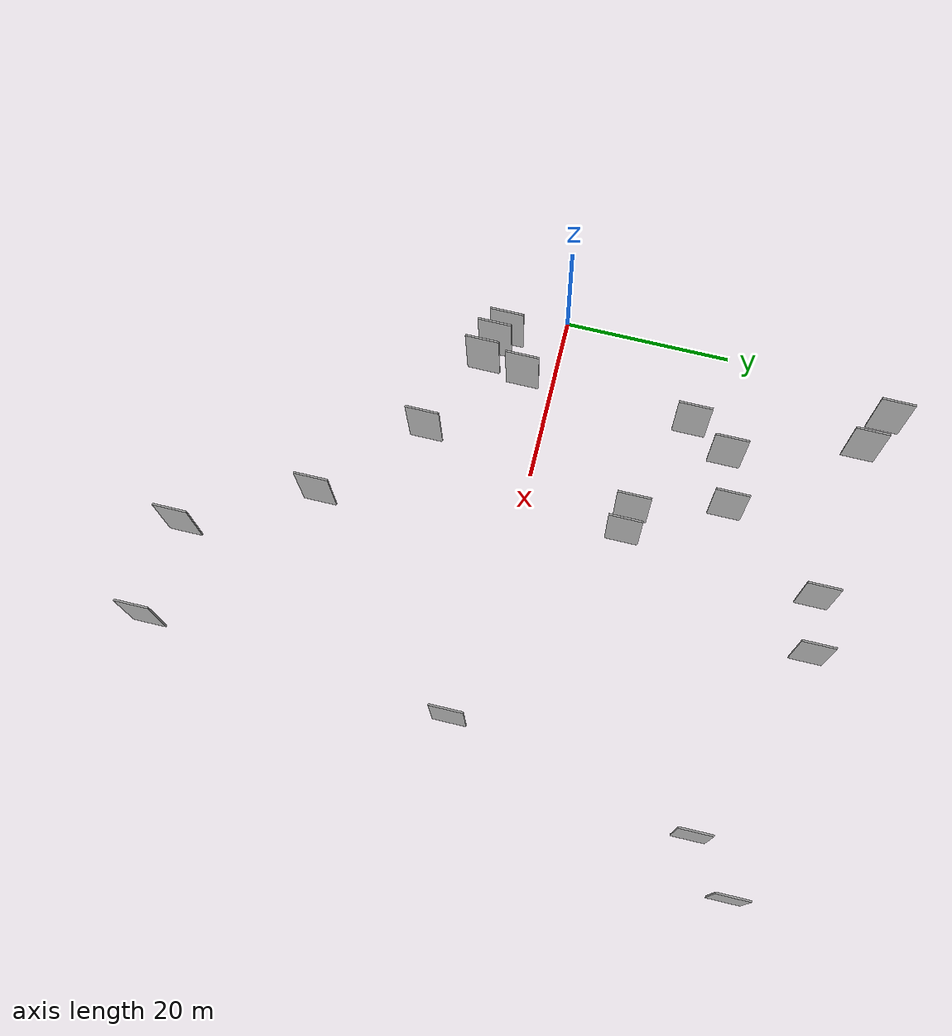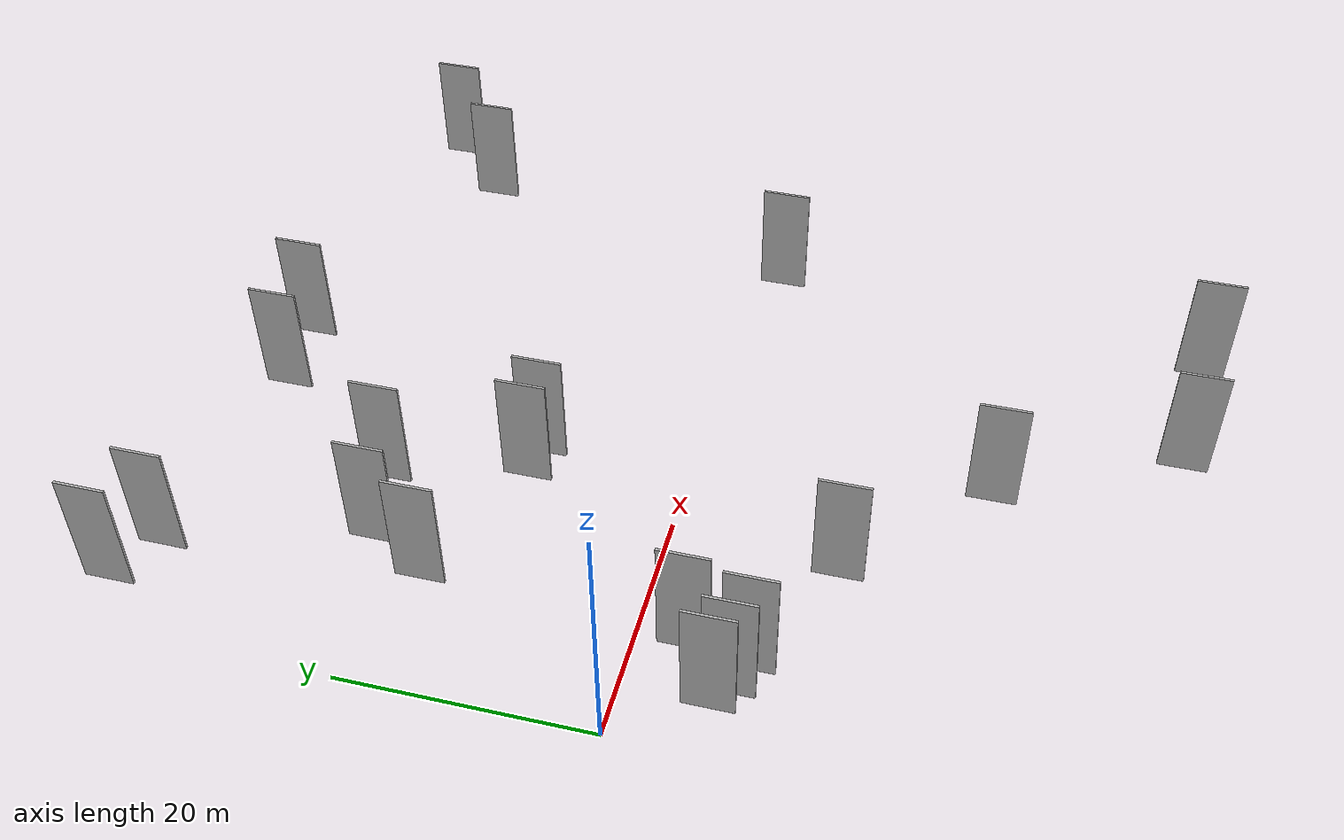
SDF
<sdf version="1.6">
 <world name="default">
  <scene>
   <sky><clouds><speed>12</speed></clouds></sky>
   <ambient>0.4 0.4 0.4 1</ambient>
   <background>0.7 0.7 0.7 1</background>
   <shadows>1</shadows>
  </scene>
  <gravity>0 0 -9.8066</gravity>
  <magnetic_field>6e-06 2.3e-05 -4.2e-05</magnetic_field>
  <physics default="0" name="default_physics" type="ode">
   <ode>
    <solver>
     <type>quick</type>
     <iters>10</iters>
     <sor>1.0</sor>
     <use_dynamic_moi_rescaling>0</use_dynamic_moi_rescaling>
    </solver>
    <constraints>
     <cfm>0</cfm>
     <erp>0.2</erp>
     <contact_max_correcting_vel>100</contact_max_correcting_vel>
     <contact_surface_layer>0.001</contact_surface_layer>
    </constraints>
   </ode>
   <max_step_size>0.004</max_step_size>
   <real_time_factor>1</real_time_factor>
   <real_time_update_rate>250</real_time_update_rate>
  </physics>
  <light name="sun" type="directional">
   <pose>0 0 10 0 0 0</pose>
   <diffuse>0.8 0.8 0.8 1</diffuse>
   <specular>0.2 0.2 0.2 1</specular>
   <attenuation>
    <range>1000</range>
    <constant>0.9</constant>
    <linear>0.01</linear>
    <quadratic>0.001</quadratic>
   </attenuation>
   <direction>-0.5 0.1 -0.9</direction>
  </light>
  <model name="grey_wall_1">
   <static>1</static>
   <pose>28.7479 -23.6160 0.0 0.000000 0.000000 1.570796</pose>
   <link name="link">
    <pose>0 0 5.00 0 0 0</pose>
    <collision name="collision"><geometry><box><size>4.00 0.2 10.00</size></box></geometry></collision>
    <visual name="visual">
     <cast_shadows>0</cast_shadows>
     <geometry><box><size>4.00 0.2 10.00</size></box></geometry>
     <material>
      <script>
       <uri>model://HANNAS_wall/materials/scripts</uri>
       <uri>model://HANNAS_wall/materials/textures</uri>
       <name>vrc/HANNAS_wall</name>
      </script>
     </material>
    </visual>
   </link>
  </model>
  <model name="grey_wall_2">
   <static>1</static>
   <pose>10.2868 17.2033 0.0 0.000000 0.000000 1.570796</pose>
   <link name="link">
    <pose>0 0 5.00 0 0 0</pose>
    <collision name="collision"><geometry><box><size>4.00 0.2 10.00</size></box></geometry></collision>
    <visual name="visual">
     <cast_shadows>0</cast_shadows>
     <geometry><box><size>4.00 0.2 10.00</size></box></geometry>
     <material>
      <script>
       <uri>model://HANNAS_wall/materials/scripts</uri>
       <uri>model://HANNAS_wall/materials/textures</uri>
       <name>vrc/HANNAS_wall</name>
      </script>
     </material>
    </visual>
   </link>
  </model>
  <model name="grey_wall_3">
   <static>1</static>
   <pose>4.4947 39.8140 0.0 0.000000 0.000000 1.570796</pose>
   <link name="link">
    <pose>0 0 5.00 0 0 0</pose>
    <collision name="collision"><geometry><box><size>4.00 0.2 10.00</size></box></geometry></collision>
    <visual name="visual">
     <cast_shadows>0</cast_shadows>
     <geometry><box><size>4.00 0.2 10.00</size></box></geometry>
     <material>
      <script>
       <uri>model://HANNAS_wall/materials/scripts</uri>
       <uri>model://HANNAS_wall/materials/textures</uri>
       <name>vrc/HANNAS_wall</name>
      </script>
     </material>
    </visual>
   </link>
  </model>
  <model name="grey_wall_4">
   <static>1</static>
   <pose>8.0867 -8.6147 0.0 0.000000 0.000000 1.570796</pose>
   <link name="link">
    <pose>0 0 5.00 0 0 0</pose>
    <collision name="collision"><geometry><box><size>4.00 0.2 10.00</size></box></geometry></collision>
    <visual name="visual">
     <cast_shadows>0</cast_shadows>
     <geometry><box><size>4.00 0.2 10.00</size></box></geometry>
     <material>
      <script>
       <uri>model://HANNAS_wall/materials/scripts</uri>
       <uri>model://HANNAS_wall/materials/textures</uri>
       <name>vrc/HANNAS_wall</name>
      </script>
     </material>
    </visual>
   </link>
  </model>
  <model name="grey_wall_5">
   <static>1</static>
   <pose>25.2480 12.2914 0.0 0.000000 0.000000 1.570796</pose>
   <link name="link">
    <pose>0 0 5.00 0 0 0</pose>
    <collision name="collision"><geometry><box><size>4.00 0.2 10.00</size></box></geometry></collision>
    <visual name="visual">
     <cast_shadows>0</cast_shadows>
     <geometry><box><size>4.00 0.2 10.00</size></box></geometry>
     <material>
      <script>
       <uri>model://HANNAS_wall/materials/scripts</uri>
       <uri>model://HANNAS_wall/materials/textures</uri>
       <name>vrc/HANNAS_wall</name>
      </script>
     </material>
    </visual>
   </link>
  </model>
  <model name="grey_wall_6">
   <static>1</static>
   <pose>36.0500 -38.1346 0.0 0.000000 0.000000 1.570796</pose>
   <link name="link">
    <pose>0 0 5.00 0 0 0</pose>
    <collision name="collision"><geometry><box><size>4.00 0.2 10.00</size></box></geometry></collision>
    <visual name="visual">
     <cast_shadows>0</cast_shadows>
     <geometry><box><size>4.00 0.2 10.00</size></box></geometry>
     <material>
      <script>
       <uri>model://HANNAS_wall/materials/scripts</uri>
       <uri>model://HANNAS_wall/materials/textures</uri>
       <name>vrc/HANNAS_wall</name>
      </script>
     </material>
    </visual>
   </link>
  </model>
  <model name="grey_wall_7">
   <static>1</static>
   <pose>5.7290 -7.6844 0.0 0.000000 0.000000 1.570796</pose>
   <link name="link">
    <pose>0 0 5.00 0 0 0</pose>
    <collision name="collision"><geometry><box><size>4.00 0.2 10.00</size></box></geometry></collision>
    <visual name="visual">
     <cast_shadows>0</cast_shadows>
     <geometry><box><size>4.00 0.2 10.00</size></box></geometry>
     <material>
      <script>
       <uri>model://HANNAS_wall/materials/scripts</uri>
       <uri>model://HANNAS_wall/materials/textures</uri>
       <name>vrc/HANNAS_wall</name>
      </script>
     </material>
    </visual>
   </link>
  </model>
  <model name="grey_wall_8">
   <static>1</static>
   <pose>34.4323 36.3055 0.0 0.000000 0.000000 1.570796</pose>
   <link name="link">
    <pose>0 0 5.00 0 0 0</pose>
    <collision name="collision"><geometry><box><size>4.00 0.2 10.00</size></box></geometry></collision>
    <visual name="visual">
     <cast_shadows>0</cast_shadows>
     <geometry><box><size>4.00 0.2 10.00</size></box></geometry>
     <material>
      <script>
       <uri>model://HANNAS_wall/materials/scripts</uri>
       <uri>model://HANNAS_wall/materials/textures</uri>
       <name>vrc/HANNAS_wall</name>
      </script>
     </material>
    </visual>
   </link>
  </model>
  <model name="grey_wall_9">
   <static>1</static>
   <pose>22.3608 12.6694 0.0 0.000000 0.000000 1.570796</pose>
   <link name="link">
    <pose>0 0 5.00 0 0 0</pose>
    <collision name="collision"><geometry><box><size>4.00 0.2 10.00</size></box></geometry></collision>
    <visual name="visual">
     <cast_shadows>0</cast_shadows>
     <geometry><box><size>4.00 0.2 10.00</size></box></geometry>
     <material>
      <script>
       <uri>model://HANNAS_wall/materials/scripts</uri>
       <uri>model://HANNAS_wall/materials/textures</uri>
       <name>vrc/HANNAS_wall</name>
      </script>
     </material>
    </visual>
   </link>
  </model>
  <model name="grey_wall_10">
   <static>1</static>
   <pose>47.6991 -39.2031 0.0 0.000000 0.000000 1.570796</pose>
   <link name="link">
    <pose>0 0 5.00 0 0 0</pose>
    <collision name="collision"><geometry><box><size>4.00 0.2 10.00</size></box></geometry></collision>
    <visual name="visual">
     <cast_shadows>0</cast_shadows>
     <geometry><box><size>4.00 0.2 10.00</size></box></geometry>
     <material>
      <script>
       <uri>model://HANNAS_wall/materials/scripts</uri>
       <uri>model://HANNAS_wall/materials/textures</uri>
       <name>vrc/HANNAS_wall</name>
      </script>
     </material>
    </visual>
   </link>
  </model>
  <model name="grey_wall_11">
   <static>1</static>
   <pose>50.9780 -2.2594 0.0 0.000000 0.000000 1.570796</pose>
   <link name="link">
    <pose>0 0 5.00 0 0 0</pose>
    <collision name="collision"><geometry><box><size>4.00 0.2 10.00</size></box></geometry></collision>
    <visual name="visual">
     <cast_shadows>0</cast_shadows>
     <geometry><box><size>4.00 0.2 10.00</size></box></geometry>
     <material>
      <script>
       <uri>model://HANNAS_wall/materials/scripts</uri>
       <uri>model://HANNAS_wall/materials/textures</uri>
       <name>vrc/HANNAS_wall</name>
      </script>
     </material>
    </visual>
   </link>
  </model>
  <model name="grey_wall_12">
   <static>1</static>
   <pose>8.9017 -3.6279 0.0 0.000000 0.000000 1.570796</pose>
   <link name="link">
    <pose>0 0 5.00 0 0 0</pose>
    <collision name="collision"><geometry><box><size>4.00 0.2 10.00</size></box></geometry></collision>
    <visual name="visual">
     <cast_shadows>0</cast_shadows>
     <geometry><box><size>4.00 0.2 10.00</size></box></geometry>
     <material>
      <script>
       <uri>model://HANNAS_wall/materials/scripts</uri>
       <uri>model://HANNAS_wall/materials/textures</uri>
       <name>vrc/HANNAS_wall</name>
      </script>
     </material>
    </visual>
   </link>
  </model>
  <model name="grey_wall_13">
   <static>1</static>
   <pose>27.7600 35.6524 0.0 0.000000 0.000000 1.570796</pose>
   <link name="link">
    <pose>0 0 5.00 0 0 0</pose>
    <collision name="collision"><geometry><box><size>4.00 0.2 10.00</size></box></geometry></collision>
    <visual name="visual">
     <cast_shadows>0</cast_shadows>
     <geometry><box><size>4.00 0.2 10.00</size></box></geometry>
     <material>
      <script>
       <uri>model://HANNAS_wall/materials/scripts</uri>
       <uri>model://HANNAS_wall/materials/textures</uri>
       <name>vrc/HANNAS_wall</name>
      </script>
     </material>
    </visual>
   </link>
  </model>
  <model name="grey_wall_14">
   <static>1</static>
   <pose>19.4720 23.4705 0.0 0.000000 0.000000 1.570796</pose>
   <link name="link">
    <pose>0 0 5.00 0 0 0</pose>
    <collision name="collision"><geometry><box><size>4.00 0.2 10.00</size></box></geometry></collision>
    <visual name="visual">
     <cast_shadows>0</cast_shadows>
     <geometry><box><size>4.00 0.2 10.00</size></box></geometry>
     <material>
      <script>
       <uri>model://HANNAS_wall/materials/scripts</uri>
       <uri>model://HANNAS_wall/materials/textures</uri>
       <name>vrc/HANNAS_wall</name>
      </script>
     </material>
    </visual>
   </link>
  </model>
  <model name="grey_wall_15">
   <static>1</static>
   <pose>63.5516 32.5957 0.0 0.000000 0.000000 1.570796</pose>
   <link name="link">
    <pose>0 0 5.00 0 0 0</pose>
    <collision name="collision"><geometry><box><size>4.00 0.2 10.00</size></box></geometry></collision>
    <visual name="visual">
     <cast_shadows>0</cast_shadows>
     <geometry><box><size>4.00 0.2 10.00</size></box></geometry>
     <material>
      <script>
       <uri>model://HANNAS_wall/materials/scripts</uri>
       <uri>model://HANNAS_wall/materials/textures</uri>
       <name>vrc/HANNAS_wall</name>
      </script>
     </material>
    </visual>
   </link>
  </model>
  <model name="grey_wall_16">
   <static>1</static>
   <pose>18.1136 -13.2691 0.0 0.000000 0.000000 1.570796</pose>
   <link name="link">
    <pose>0 0 5.00 0 0 0</pose>
    <collision name="collision"><geometry><box><size>4.00 0.2 10.00</size></box></geometry></collision>
    <visual name="visual">
     <cast_shadows>0</cast_shadows>
     <geometry><box><size>4.00 0.2 10.00</size></box></geometry>
     <material>
      <script>
       <uri>model://HANNAS_wall/materials/scripts</uri>
       <uri>model://HANNAS_wall/materials/textures</uri>
       <name>vrc/HANNAS_wall</name>
      </script>
     </material>
    </visual>
   </link>
  </model>
  <model name="grey_wall_17">
   <static>1</static>
   <pose>4.1295 -6.5941 0.0 0.000000 0.000000 1.570796</pose>
   <link name="link">
    <pose>0 0 5.00 0 0 0</pose>
    <collision name="collision"><geometry><box><size>4.00 0.2 10.00</size></box></geometry></collision>
    <visual name="visual">
     <cast_shadows>0</cast_shadows>
     <geometry><box><size>4.00 0.2 10.00</size></box></geometry>
     <material>
      <script>
       <uri>model://HANNAS_wall/materials/scripts</uri>
       <uri>model://HANNAS_wall/materials/textures</uri>
       <name>vrc/HANNAS_wall</name>
      </script>
     </material>
    </visual>
   </link>
  </model>
  <model name="grey_wall_18">
   <static>1</static>
   <pose>57.6872 27.2830 0.0 0.000000 0.000000 1.570796</pose>
   <link name="link">
    <pose>0 0 5.00 0 0 0</pose>
    <collision name="collision"><geometry><box><size>4.00 0.2 10.00</size></box></geometry></collision>
    <visual name="visual">
     <cast_shadows>0</cast_shadows>
     <geometry><box><size>4.00 0.2 10.00</size></box></geometry>
     <material>
      <script>
       <uri>model://HANNAS_wall/materials/scripts</uri>
       <uri>model://HANNAS_wall/materials/textures</uri>
       <name>vrc/HANNAS_wall</name>
      </script>
     </material>
    </visual>
   </link>
  </model>
  <model name="grey_wall_19">
   <static>1</static>
   <pose>8.6319 37.5831 0.0 0.000000 0.000000 1.570796</pose>
   <link name="link">
    <pose>0 0 5.00 0 0 0</pose>
    <collision name="collision"><geometry><box><size>4.00 0.2 10.00</size></box></geometry></collision>
    <visual name="visual">
     <cast_shadows>0</cast_shadows>
     <geometry><box><size>4.00 0.2 10.00</size></box></geometry>
     <material>
      <script>
       <uri>model://HANNAS_wall/materials/scripts</uri>
       <uri>model://HANNAS_wall/materials/textures</uri>
       <name>vrc/HANNAS_wall</name>
      </script>
     </material>
    </visual>
   </link>
  </model>
  <model name="grey_wall_20">
   <static>1</static>
   <pose>13.1268 22.0799 0.0 0.000000 0.000000 1.570796</pose>
   <link name="link">
    <pose>0 0 5.00 0 0 0</pose>
    <collision name="collision"><geometry><box><size>4.00 0.2 10.00</size></box></geometry></collision>
    <visual name="visual">
     <cast_shadows>0</cast_shadows>
     <geometry><box><size>4.00 0.2 10.00</size></box></geometry>
     <material>
      <script>
       <uri>model://HANNAS_wall/materials/scripts</uri>
       <uri>model://HANNAS_wall/materials/textures</uri>
       <name>vrc/HANNAS_wall</name>
      </script>
     </material>
    </visual>
   </link>
  </model>
 </world>
</sdf>
